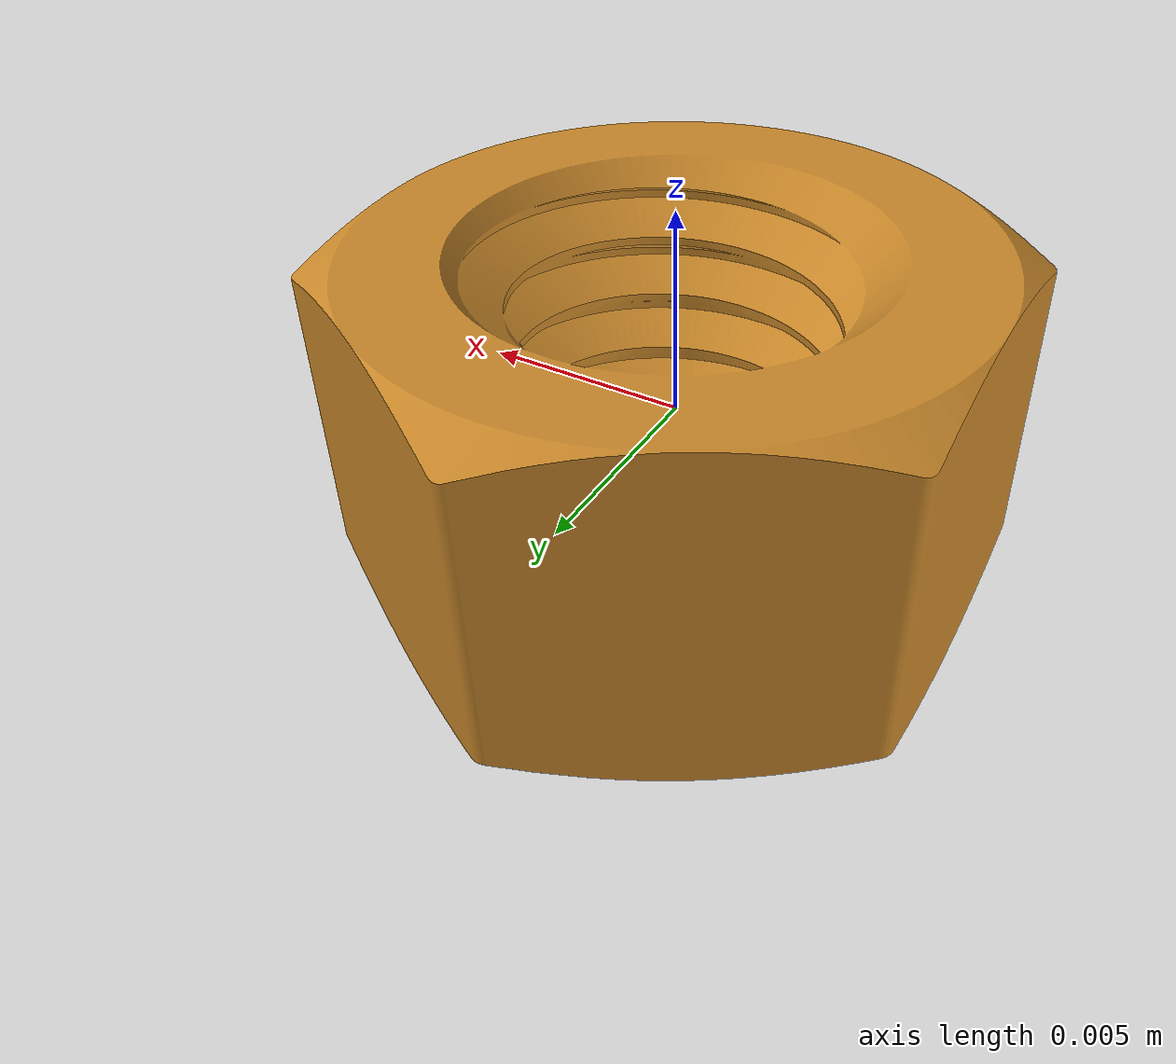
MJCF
<mujoco model="sorting_nut1">
  <default>
    <default class="nut_visual">
      <geom group="2" type="mesh" contype="0" conaffinity="0"/>
    </default>
    <default class="nut_collision">
      <geom group="3" type="mesh"/>
    </default>
  </default>
  <asset>
    <material name="material_1" specular="0.5" shininess="0.5" rgba="0.7991027 0.53947407 0.16513054 1"/>
    <mesh file="sorting_nut1.obj"/>
  </asset>
  <worldbody>
    <body name="sorting_nut1">
      <freejoint/>
      <geom material="material_1" mesh="sorting_nut1" class="nut_visual"/>
      <geom mesh="sorting_nut1" class="nut_collision"/>
    </body>

  </worldbody>
</mujoco>
